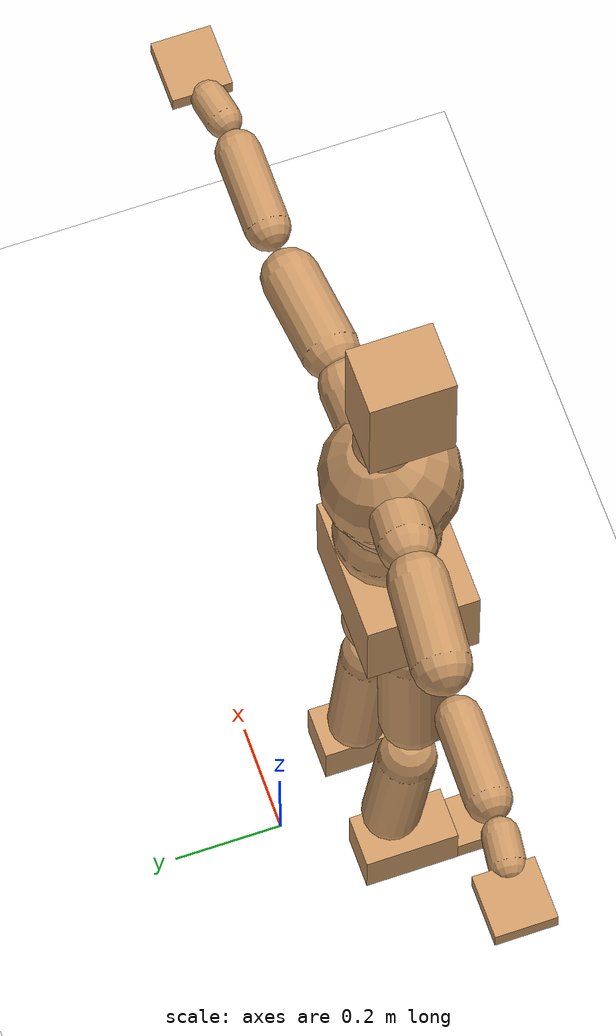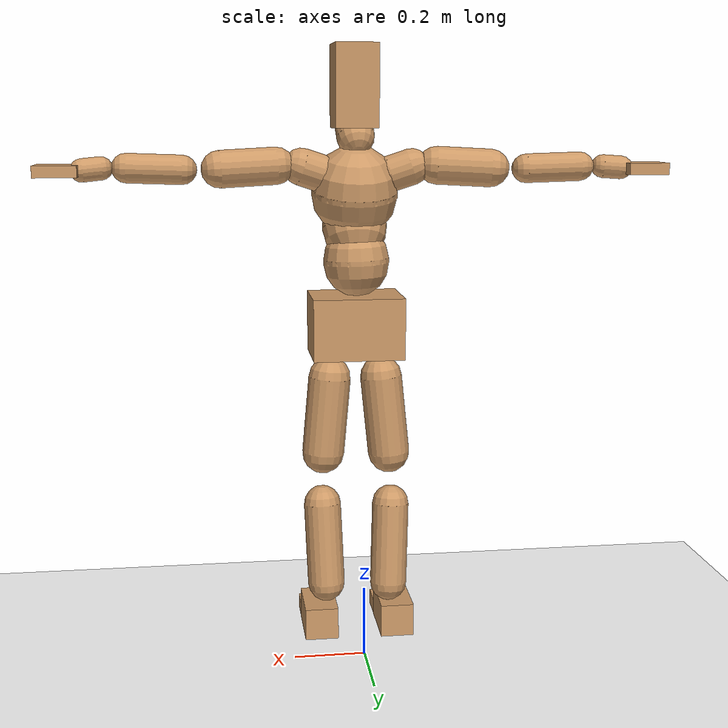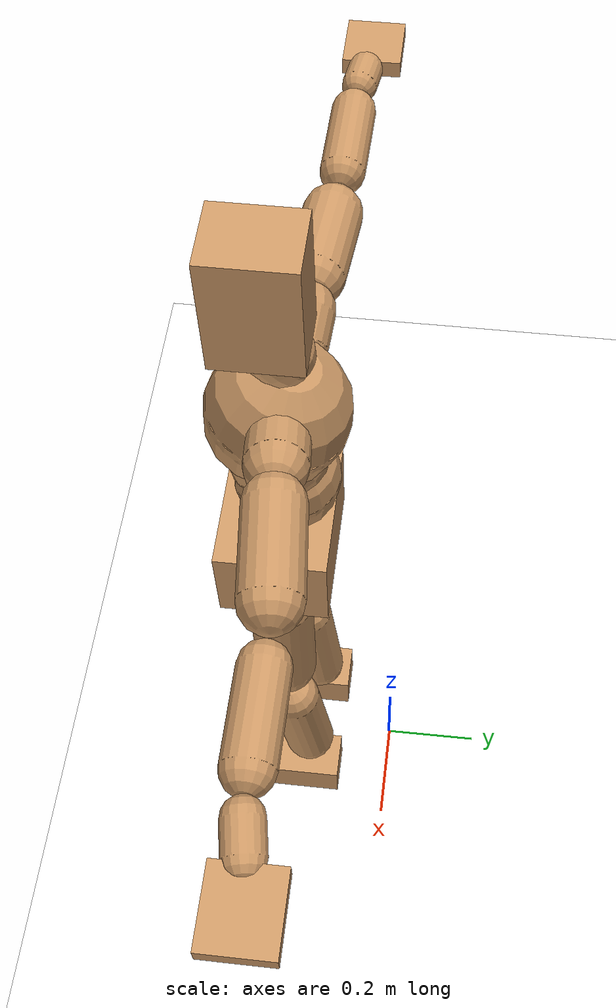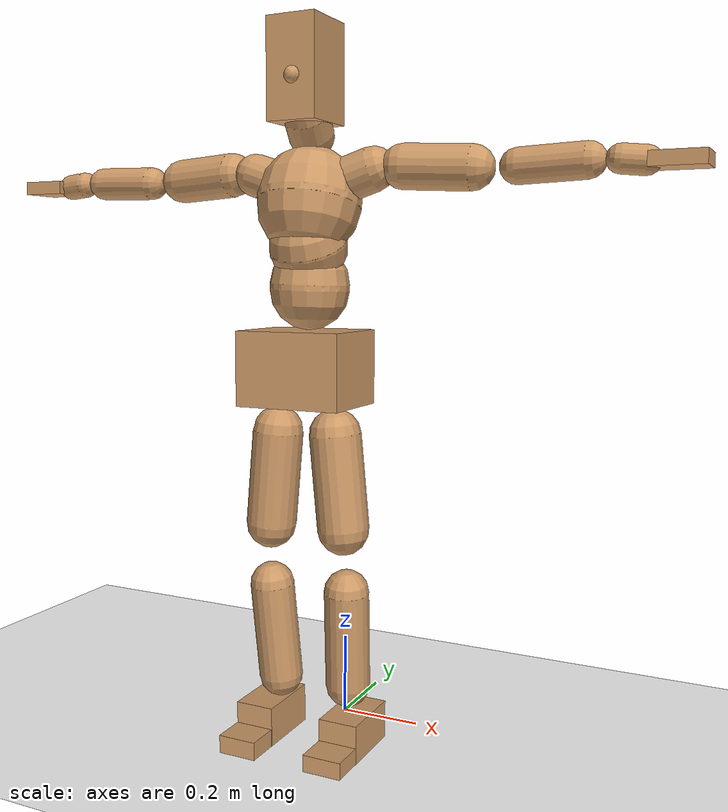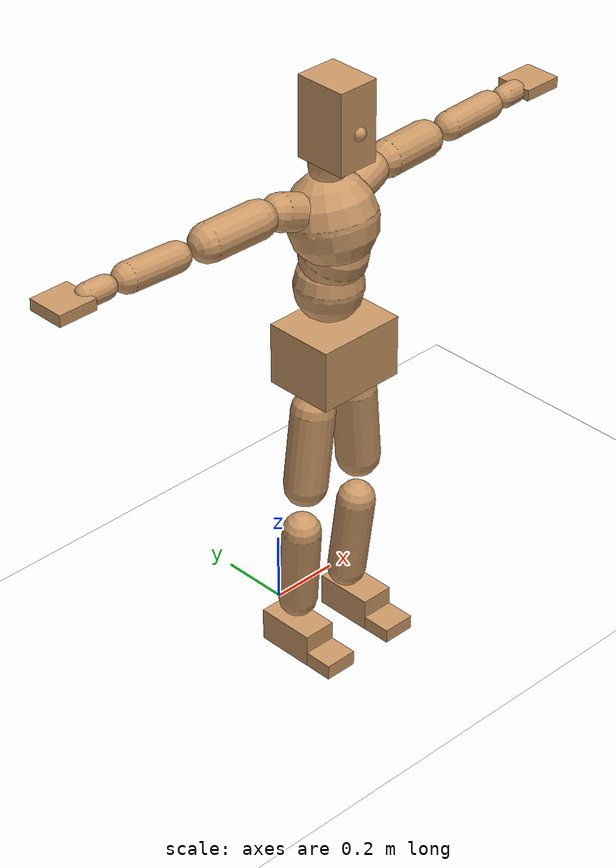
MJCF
<mujoco model="humanoid">
  <option integrator="implicitfast" />

  <visual>
    <global offwidth="1280" offheight="960" />
    <headlight active="1" ambient="0.34 0.34 0.34" diffuse="0.5 0.5 0.5" />
  </visual>

  <default>
    <joint damping="2" stiffness="2" armature="0.01" limited="true" solimplimit="0 .99 .01" />
    <geom condim="1" friction="0.7 0.005 0.0001" solimp=".99 .99 .003" solref="0.015 1" margin="0.001" rgba="0.8 0.6 .4 1" />
    <default class="smplcontact">
      <geom condim="3" friction="1. 0.005 0.0001" solref="0.015 1" solimp="0.98 0.98 0.001" priority="1" />
    </default>
    <default class="stiff_medium">
      <joint stiffness="10" />
    </default>
    <default class="stiff_medium_higher">
      <joint stiffness="50" />
    </default>
    <default class="stiff_high">
      <joint stiffness="100" />
    </default>
  </default>

  <asset>
    <texture type="skybox" builtin="gradient" rgb1="0.99 0.99 0.99" rgb2="0.608 0.828 0.892" width="100" />
    <texture builtin="flat" height="1278" mark="cross" markrgb="1 1 1" name="texgeom" random="0.01" rgb1="0.8 0.6 0.4" rgb2="0.8 0.6 0.4" type="cube" width="127" />
    <texture name="texplane" type="2d" builtin="checker" markrgb="1 1 1" rgb1="0.756 0.772 0.76" rgb2="0.6 0.6 0.6" width="100" height="100" />
    <material name="MatPlane" reflectance="0.5" texture="texplane" texrepeat="1 1" texuniform="true" />
    <material name="geom" texture="texgeom" texuniform="true" />
  </asset>

  <worldbody>
    <light name="tracking_light" pos="0 0 7" dir="0 0 -1" directional="true" cutoff="100" exponent="1" diffuse="1 1 1" specular="0.1 0.1 0.1" mode="trackcom" />
    <camera name="back" pos="0 3 2.4" xyaxes="-1 0 0 0 -1 2" mode="trackcom" />
    <camera name="side" pos="-3 0 2.4" xyaxes="0 -1 0 1 0 2" mode="trackcom" />
    <camera name="front_side" pos="-2.8 -2.8 0.8" xyaxes="0.5 -0.5 0 0.1 0.1 1" mode="trackcom" />
    <geom condim="3" name="floor" pos="0 0 0" rgba="1 1 1 1" size="100 100 .2" type="plane" material="MatPlane" />
    <body name="Pelvis" pos="-0.0018 -0.2233 0.9367" euler="90 0 0">
      <site name="Pelvis" size="0.01" />
      <freejoint name="Pelvis" />
      <geom type="box" pos="-0.0000 -0.0121 -0.0055" size="0.130952 0.088445 0.101675" quat="1.0000 0.0000 0.0000 0.0000" density="3165.830099" name="Pelvis" />
      <body name="L_Hip" pos="0.0695 -0.0914 -0.0068">
        <joint name="L_Hip_x" type="hinge" pos="0 0 0" axis="1 0 0" stiffness="10.0" range="-160.0 22.92" class="stiff_medium" damping="15.0" armature="0.010000000000000002"/>
        <joint name="L_Hip_y" type="hinge" pos="0 0 0" axis="0 1 0" stiffness="10.0" range="-70.0 70.0" class="stiff_medium" damping="10.0" armature="0.01"/>
        <joint name="L_Hip_z" type="hinge" pos="0 0 0" axis="0 0 1" stiffness="10.0" range="-28.65 90.0" class="stiff_medium" damping="9.999999999999998" armature="0.009999999999999998"/>
        <geom type="capsule" density="2040.816327" fromto="0.0069 -0.075 -0.0009 0.0274 -0.3002 -0.0036" size="0.0615" name="L_Hip" />
        <body name="L_Knee" pos="0.0343 -0.3752 -0.0045">
          <joint name="L_Knee_x" type="hinge" pos="0 0 0" axis="1 0 0" range="-5.16 171.89" damping="8.000000000000004" armature="0.010000000000000009" stiffness="2.0"/>
          <joint name="L_Knee_y" type="hinge" pos="0 0 0" axis="0 1 0" range="-4.58 6.88" damping="8.000000000000002" armature="0.010000000000000005" stiffness="2.0"/>
          <joint name="L_Knee_z" type="hinge" pos="0 0 0" axis="0 0 1" range="-6.88 4.58" damping="7.999999999999997" armature="0.009999999999999993" stiffness="2.0"/>
          <geom type="capsule" density="1234.567901" fromto="-0.0027 -0.0796 -0.0087 -0.0109 -0.3184 -0.035" size="0.0541" name="L_Knee" />
          <body name="L_Ankle" pos="-0.0136 -0.398 -0.0437">
            <joint name="L_Ankle_x" type="hinge" pos="0 0 0" axis="1 0 0" range="-45.84 45.84" class="stiff_medium" damping="6.000000000000062" armature="0.010000000000000208" stiffness="10.0"/>
            <joint name="L_Ankle_y" type="hinge" pos="0 0 0" axis="0 1 0" range="-74.48 22.92" class="stiff_medium" damping="3.0" armature="0.01" stiffness="10.0"/>
            <joint name="L_Ankle_z" type="hinge" pos="0 0 0" axis="0 0 1" range="-4.58 4.58" class="stiff_medium" damping="6.000000000000039" armature="0.010000000000000129" stiffness="10.0"/>
            <geom type="box" pos="0.0233 -0.0239 0.0242" size="0.0483 0.0464 0.085" quat="1.0000 0.0000 0.0000 0.0000" density="449.071558" name="L_Ankle" class="smplcontact" />
            <body name="L_Toe" pos="0.0264 -0.0558 0.1193">
              <joint name="L_Toe_x" type="hinge" pos="0 0 0" axis="1 0 0" range="-91.67 22.92" armature="0.00999999999999969" damping="1.999999999999969" stiffness="2.0"/>
              <joint name="L_Toe_y" type="hinge" pos="0 0 0" axis="0 1 0" range="-4.58 4.58" armature="0.009999999999999976" damping="1.9999999999999976" stiffness="2.0"/>
              <joint name="L_Toe_z" type="hinge" pos="0 0 0" axis="0 0 1" range="-4.58 4.58" armature="0.010000000000000267" damping="2.0000000000000266" stiffness="2.0"/>
              <geom type="box" pos="-0.003 0.0055 0.0248" size="0.0478 0.02 0.0496" quat="1.0000 0.0000 0.0000 0.0000" density="423.206892" name="L_Toe" class="smplcontact" />
            </body>
          </body>
        </body>
      </body>
      <body name="R_Hip" pos="-0.0677 -0.0905 -0.0043">
        <joint name="R_Hip_x" type="hinge" pos="0 0 0" axis="1 0 0" stiffness="10.0" range="-160.0 22.92" class="stiff_medium" damping="15.0" armature="0.010000000000000002"/>
        <joint name="R_Hip_y" type="hinge" pos="0 0 0" axis="0 1 0" stiffness="10.0" range="-70.0 70.0" class="stiff_medium" damping="10.0" armature="0.01"/>
        <joint name="R_Hip_z" type="hinge" pos="0 0 0" axis="0 0 1" stiffness="10.0" range="-90.0 28.65" class="stiff_medium" damping="9.999999999999998" armature="0.009999999999999998"/>
        <geom type="capsule" density="2040.816327" fromto="-0.0077 -0.0765 -0.0018 -0.0306 -0.3061 -0.0071" size="0.0606" name="R_Hip" />
        <body name="R_Knee" pos="-0.0383 -0.3826 -0.0089">
          <joint name="R_Knee_x" type="hinge" pos="0 0 0" axis="1 0 0" range="-5.16 171.89" damping="8.000000000000004" armature="0.010000000000000009" stiffness="2.0"/>
          <joint name="R_Knee_y" type="hinge" pos="0 0 0" axis="0 1 0" range="-6.88 4.58" damping="8.000000000000002" armature="0.010000000000000005" stiffness="2.0"/>
          <joint name="R_Knee_z" type="hinge" pos="0 0 0" axis="0 0 1" range="-4.58 6.88" damping="7.999999999999997" armature="0.009999999999999993" stiffness="2.0"/>
          <geom type="capsule" density="1234.567901" fromto="0.0032 -0.0797 -0.0085 0.0126 -0.3187 -0.0338" size="0.0541" name="R_Knee" />
          <body name="R_Ankle" pos="0.0158 -0.3984 -0.0423">
            <joint name="R_Ankle_x" type="hinge" pos="0 0 0" axis="1 0 0" range="-45.84 45.84" class="stiff_medium" damping="6.000000000000062" armature="0.010000000000000208" stiffness="10.0"/>
            <joint name="R_Ankle_y" type="hinge" pos="0 0 0" axis="0 1 0" range="-22.92 74.48" class="stiff_medium" damping="3.0" armature="0.01" stiffness="10.0"/>
            <joint name="R_Ankle_z" type="hinge" pos="0 0 0" axis="0 0 1" range="-4.58 4.58" class="stiff_medium" damping="6.000000000000039" armature="0.010000000000000129" stiffness="10.0"/>
            <geom type="box" pos="-0.0212 -0.0174 0.0256" size="0.0483 0.0478 0.0865" quat="1.0000 0.0000 0.0000 0.0000" density="434.700981" name="R_Ankle" class="smplcontact" />
            <body name="R_Toe" pos="-0.0254 -0.0481 0.1233">
              <joint name="R_Toe_x" type="hinge" pos="0 0 0" axis="1 0 0" range="-91.67 22.92" armature="0.00999999999999969" damping="1.999999999999969" stiffness="2.0"/>
              <joint name="R_Toe_y" type="hinge" pos="0 0 0" axis="0 1 0" range="-4.58 4.58" armature="0.009999999999999976" damping="1.9999999999999976" stiffness="2.0"/>
              <joint name="R_Toe_z" type="hinge" pos="0 0 0" axis="0 0 1" range="-4.58 4.58" armature="0.010000000000000267" damping="2.0000000000000266" stiffness="2.0"/>
              <geom type="box" pos="0.0042 0.0045 0.0227" size="0.0479 0.0216 0.0493" quat="1.0000 0.0000 0.0000 0.0000" density="407.384095" name="R_Toe" class="smplcontact" />
            </body>
          </body>
        </body>
      </body>
      <body name="Torso" pos="-0.0025 0.109 -0.0267">
        <joint name="Torso_x" type="hinge" pos="0 0 0" axis="1 0 0" range="-25.78 57.3" class="stiff_medium" damping="19.22655919460388" armature="0.012466699064776685" stiffness="13.178595999999999"/>
        <joint name="Torso_y" type="hinge" pos="0 0 0" axis="0 1 0" range="-57.3 57.3" class="stiff_high" damping="23.80807450861472" armature="0.010604346966136095" stiffness="133.6302022222222"/>
        <joint name="Torso_z" type="hinge" pos="0 0 0" axis="0 0 1" range="-34.38 34.38" class="stiff_high" damping="25.47066272531223" armature="0.011670375208078823" stiffness="138.97467906976743"/>
        <geom type="capsule" density="2040.816327" fromto="0.0025 0.0608 0.0005 0.003 0.0743 0.0006" size="0.0942025" name="Torso" />
        <body name="Spine" pos="0.0055 0.1352 0.0011">
          <joint name="Spine_x" type="hinge" pos="0 0 0" axis="1 0 0" stiffness="12.627337999999998" range="-25.78 57.3" class="stiff_medium" damping="18.3091630384234" armature="0.011798930970867236"/>
          <joint name="Spine_y" type="hinge" pos="0 0 0" axis="0 1 0" stiffness="12.676794888888892" range="-57.3 57.3" class="stiff_high" damping="9.228849699045794" armature="0.010497979220361468"/>
          <joint name="Spine_z" type="hinge" pos="0 0 0" axis="0 0 1" stiffness="24.861915454545453" range="-34.38 34.38" class="stiff_high" damping="13.93506185537756" armature="0.010848026062874326"/>
          <geom type="capsule" density="2040.816327" fromto="0.0007 0.0238 0.0114 0.0008 0.0291 0.014" size="0.0924875" name="Spine" />
          <body name="Chest" pos="0.0015 0.0529 0.0254">
            <joint name="Chest_x" type="hinge" pos="0 0 0" axis="1 0 0" stiffness="11.887542558139534" range="-25.78 57.3" class="stiff_medium" damping="17.529962003683778" armature="0.011489135373724505"/>
            <joint name="Chest_y" type="hinge" pos="0 0 0" axis="0 1 0" stiffness="11.45143027027027" range="-57.3 57.3" class="stiff_high" damping="8.736992992377683" armature="0.010415599398290152"/>
            <joint name="Chest_z" type="hinge" pos="0 0 0" axis="0 0 1" stiffness="24.259179545454543" range="-34.38 34.38" class="stiff_high" damping="13.58031949071649" armature="0.010558722336446797"/>
            <geom type="capsule" density="2040.816327" fromto="-0.0009 0.0682 -0.0173 -0.001 0.0833 -0.0212" size="0.122745" name="Chest" />
            <body name="Neck" pos="-0.0028 0.2139 -0.0429">
              <joint name="Neck_x" type="hinge" pos="0 0 0" axis="1 0 0" range="-28.65 57.3" class="stiff_medium_higher" damping="10.333458539208191" armature="0.01014279579458227" stiffness="52.63852666666667"/>
              <joint name="Neck_y" type="hinge" pos="0 0 0" axis="0 1 0" range="-40.11 40.11" class="stiff_medium_higher" damping="10.500597353016953" armature="0.010584057268371553" stiffness="52.08897777777779"/>
              <joint name="Neck_z" type="hinge" pos="0 0 0" axis="0 0 1" range="-40.11 40.11" class="stiff_medium_higher" damping="10.163324837092915" armature="0.01012026797152068" stiffness="51.032824444444444"/>
              <geom type="capsule" density="1000" fromto="0.001 0.013 0.0103 0.0041 0.052 0.0411" size="0.05341" name="Neck" />
              <body name="Head" pos="0.0052 0.065 0.0513">
                <joint name="Head_x" type="hinge" pos="0 0 0" axis="1 0 0" range="-28.65 57.3" class="stiff_medium_higher" damping="1.9999999999999978" armature="0.009999999999999978" stiffness="50.0"/>
                <joint name="Head_y" type="hinge" pos="0 0 0" axis="0 1 0" range="-40.11 40.11" class="stiff_medium_higher" damping="2.0" armature="0.01" stiffness="50.0"/>
                <joint name="Head_z" type="hinge" pos="0 0 0" axis="0 0 1" range="-40.11 40.11" class="stiff_medium_higher" damping="1.999999999999996" armature="0.009999999999999962" stiffness="50.0"/>
                <geom type="box" pos="-0.0042 0.0876 -0.0116" size="0.0606 0.1154 0.076" quat="1.0000 0.0000 0.0000 0.0000" density="1018.069894" name="Head" />
                <geom type="capsule" name="nose" size="0.02 0.01" pos="0 0.07 0.05" quat="1 0 0 0" mass="0" contype="0" conaffinity="0" />
              </body>
            </body>
            <body name="L_Thorax" pos="0.0788 0.1217 -0.0341">
              <joint name="L_Thorax_x" type="hinge" pos="0 0 0" axis="1 0 0" range="-10.89 4.58" class="stiff_medium_higher" damping="19.999999999999957" armature="0.009999999999999959" stiffness="50.0"/>
              <joint name="L_Thorax_y" type="hinge" pos="0 0 0" axis="0 1 0" range="-28.65 17.19" class="stiff_medium_higher" damping="20.0" armature="0.01" stiffness="50.0"/>
              <joint name="L_Thorax_z" type="hinge" pos="0 0 0" axis="0 0 1" range="-31.51 40.11" class="stiff_medium_higher" damping="19.999999999999996" armature="0.009999999999999997" stiffness="50.0"/>
              <geom type="capsule" density="1000" fromto="0.0182 0.0061 -0.0018 0.0728 0.0244 -0.0071" size="0.0521" name="L_Thorax" />
              <body name="L_Shoulder" pos="0.091 0.0305 -0.0089">
                <joint name="L_Shoulder_x" type="hinge" pos="0 0 0" axis="1 0 0" range="-97.4 97.4" class="stiff_medium" damping="6.000000000000011" armature="0.010000000000000038" stiffness="10.0"/>
                <joint name="L_Shoulder_y" type="hinge" pos="0 0 0" axis="0 1 0" range="-108.86 80.21" class="stiff_medium" damping="6.0" armature="0.01" stiffness="10.0"/>
                <joint name="L_Shoulder_z" type="hinge" pos="0 0 0" axis="0 0 1" range="-97.4 85.94" class="stiff_medium" damping="6.0" armature="0.010000000000000002" stiffness="10.0"/>
                <geom type="capsule" density="1000" fromto="0.0519 -0.0026 -0.0055 0.2077 -0.0102 -0.022" size="0.0517" name="L_Shoulder" />
                <body name="L_Elbow" pos="0.2596 -0.0128 -0.0275">
                  <joint name="L_Elbow_x" type="hinge" pos="0 0 0" axis="1 0 0" range="-17.19 4.58" damping="4.999999999999853" armature="0.009999999999999412" stiffness="2.0"/>
                  <joint name="L_Elbow_y" type="hinge" pos="0 0 0" axis="0 1 0" range="-180.0 17.19" damping="5.000000000000001" armature="0.010000000000000005" stiffness="2.0"/>
                  <joint name="L_Elbow_z" type="hinge" pos="0 0 0" axis="0 0 1" range="-100.84 4.58" damping="4.9999999999999964" armature="0.009999999999999986" stiffness="2.0"/>
                  <geom type="capsule" density="1000" fromto="0.0498 0.0018 -0.0002 0.1994 0.0072 -0.0009" size="0.0405" name="L_Elbow" />
                  <body name="L_Wrist" pos="0.2492 0.009 -0.0012">
                    <joint name="L_Wrist_x" type="hinge" pos="0 0 0" axis="1 0 0" range="-180.0 22.92" armature="0.009999999999999364" damping="1.9999999999999363" stiffness="2.0"/>
                    <joint name="L_Wrist_y" type="hinge" pos="0 0 0" axis="0 1 0" range="-17.19 17.19" armature="0.009999999999999886" damping="1.9999999999999885" stiffness="2.0"/>
                    <joint name="L_Wrist_z" type="hinge" pos="0 0 0" axis="0 0 1" range="-22.92 22.92" armature="0.009999999999999738" damping="1.9999999999999738" stiffness="2.0"/>
                    <geom type="capsule" density="1000" fromto="0.0168 -0.0016 -0.003 0.0672 -0.0065 -0.012" size="0.0318" name="L_Wrist" class="smplcontact" />
                    <body name="L_Hand" pos="0.084 -0.0082 -0.0149">
                      <joint name="L_Hand_x" type="hinge" pos="0 0 0" axis="1 0 0" range="-17.19 17.19" armature="0.009999999999999669" damping="1.999999999999967" stiffness="2.0"/>
                      <joint name="L_Hand_y" type="hinge" pos="0 0 0" axis="0 1 0" range="-51.57 51.57" armature="0.010000000000000061" damping="2.0000000000000058" stiffness="2.0"/>
                      <joint name="L_Hand_z" type="hinge" pos="0 0 0" axis="0 0 1" range="-91.67 91.67" armature="0.010000000000000134" damping="2.0000000000000133" stiffness="2.0"/>
                      <geom type="box" pos="0.0493 0.001 -0.0058" size="0.0585 0.0158 0.0538" quat="1.0000 0.0000 0.0000 0.0000" density="400.552564" name="L_Hand" class="smplcontact" />
                    </body>
                  </body>
                </body>
              </body>
            </body>
            <body name="R_Thorax" pos="-0.0818 0.1188 -0.0386">
              <joint name="R_Thorax_x" type="hinge" pos="0 0 0" axis="1 0 0" range="-10.89 4.58" class="stiff_medium_higher" damping="19.999999999999957" armature="0.009999999999999959" stiffness="50.0"/>
              <joint name="R_Thorax_y" type="hinge" pos="0 0 0" axis="0 1 0" range="-17.19 28.65" class="stiff_medium_higher" damping="20.0" armature="0.01" stiffness="50.0"/>
              <joint name="R_Thorax_z" type="hinge" pos="0 0 0" axis="0 0 1" range="-40.11 31.51" class="stiff_medium_higher" damping="19.999999999999996" armature="0.009999999999999997" stiffness="50.0"/>
              <geom type="capsule" density="1000" fromto="-0.0192 0.0065 -0.0018 -0.0768 0.026 -0.0073" size="0.0511" name="R_Thorax" />
              <body name="R_Shoulder" pos="-0.096 0.0326 -0.0091">
                <joint name="R_Shoulder_x" type="hinge" pos="0 0 0" axis="1 0 0" range="-97.4 97.4" class="stiff_medium" damping="6.000000000000011" armature="0.010000000000000038" stiffness="10.0"/>
                <joint name="R_Shoulder_y" type="hinge" pos="0 0 0" axis="0 1 0" range="-80.21 108.86" class="stiff_medium" damping="6.0" armature="0.01" stiffness="10.0"/>
                <joint name="R_Shoulder_z" type="hinge" pos="0 0 0" axis="0 0 1" range="-85.94 97.4" class="stiff_medium" damping="6.0" armature="0.010000000000000002" stiffness="10.0"/>
                <geom type="capsule" density="1000" fromto="-0.0507 -0.0027 -0.0043 -0.203 -0.0107 -0.0171" size="0.0531" name="R_Shoulder" />
                <body name="R_Elbow" pos="-0.2537 -0.0133 -0.0214">
                  <joint name="R_Elbow_x" type="hinge" pos="0 0 0" axis="1 0 0" range="-17.19 4.58" damping="4.999999999999853" armature="0.009999999999999412" stiffness="2.0"/>
                  <joint name="R_Elbow_y" type="hinge" pos="0 0 0" axis="0 1 0" range="-17.19 180.0" damping="5.000000000000001" armature="0.010000000000000005" stiffness="2.0"/>
                  <joint name="R_Elbow_z" type="hinge" pos="0 0 0" axis="0 0 1" range="-4.58 100.84" damping="4.9999999999999964" armature="0.009999999999999986" stiffness="2.0"/>
                  <geom type="capsule" density="1000" fromto="-0.0511 0.0016 -0.0011 -0.2042 0.0062 -0.0044" size="0.0408" name="R_Elbow" />
                  <body name="R_Wrist" pos="-0.2553 0.0078 -0.0056">
                    <joint name="R_Wrist_x" type="hinge" pos="0 0 0" axis="1 0 0" range="-180.0 22.92" armature="0.009999999999999364" damping="1.9999999999999363" stiffness="2.0"/>
                    <joint name="R_Wrist_y" type="hinge" pos="0 0 0" axis="0 1 0" range="-17.19 17.19" armature="0.009999999999999886" damping="1.9999999999999885" stiffness="2.0"/>
                    <joint name="R_Wrist_z" type="hinge" pos="0 0 0" axis="0 0 1" range="-22.92 22.92" armature="0.009999999999999738" damping="1.9999999999999738" stiffness="2.0"/>
                    <geom type="capsule" density="1000" fromto="-0.0169 -0.0012 -0.0021 -0.0677 -0.0049 -0.0083" size="0.0326" name="R_Wrist" class="smplcontact" />
                    <body name="R_Hand" pos="-0.0846 -0.0061 -0.0103">
                      <joint name="R_Hand_x" type="hinge" pos="0 0 0" axis="1 0 0" range="-17.19 17.19" armature="0.009999999999999669" damping="1.999999999999967" stiffness="2.0"/>
                      <joint name="R_Hand_y" type="hinge" pos="0 0 0" axis="0 1 0" range="-51.57 51.57" armature="0.010000000000000061" damping="2.0000000000000058" stiffness="2.0"/>
                      <joint name="R_Hand_z" type="hinge" pos="0 0 0" axis="0 0 1" range="-91.67 91.67" armature="0.010000000000000134" damping="2.0000000000000133" stiffness="2.0"/>
                      <geom type="box" pos="-0.0462 -0.0009 -0.0079" size="0.0569 0.0164 0.0546" quat="1.0000 0.0000 0.0000 0.0000" density="403.679611" name="R_Hand" class="smplcontact" />
                    </body>
                  </body>
                </body>
              </body>
            </body>
          </body>
        </body>
      </body>
    </body>
  </worldbody>
  <actuator>
    <general name="L_Hip_x" joint="L_Hip_x" biastype="affine" gainprm="287.33006409732246" biasprm="-215.3247604770444 -180.0 -2.0" ctrllimited="true" ctrlrange="-1 1" forcerange="-360.0 360.0" />
    <general name="L_Hip_y" joint="L_Hip_y" biastype="affine" gainprm="219.9114857512855" biasprm="0.0 -180.0 -2.0" ctrllimited="true" ctrlrange="-1 1" forcerange="-360.0 360.0" />
    <general name="L_Hip_z" joint="L_Hip_z" biastype="affine" gainprm="186.3749841742145" biasprm="96.3683546488669 -180.0 -1.9999999999999998" ctrllimited="true" ctrlrange="-1 1" forcerange="-360.0 360.0" />
    <general name="L_Knee_x" joint="L_Knee_x" biastype="affine" gainprm="278.10948965903646" biasprm="261.8988715665131 -180.0 -2.000000000000001" ctrllimited="true" ctrlrange="-1 1" forcerange="-360.0 360.0" />
    <general name="L_Knee_y" joint="L_Knee_y" biastype="affine" gainprm="18.001325905069514" biasprm="3.612831551628262 -180.0 -2.0000000000000004" ctrllimited="true" ctrlrange="-1 1" forcerange="-360.0 360.0" />
    <general name="L_Knee_z" joint="L_Knee_z" biastype="affine" gainprm="18.001325905069514" biasprm="-3.612831551628262 -180.0 -1.9999999999999993" ctrllimited="true" ctrlrange="-1 1" forcerange="-360.0 360.0" />
    <general name="L_Ankle_x" joint="L_Ankle_x" biastype="affine" gainprm="72.00530362027807" biasprm="0.0 -90.0 -2.000000000000021" ctrllimited="true" ctrlrange="-1 1" forcerange="-180.0 180.0" />
    <general name="L_Ankle_y" joint="L_Ankle_y" biastype="affine" gainprm="76.49778111491148" biasprm="-40.49512930477244 -90.0 -2.0" ctrllimited="true" ctrlrange="-1 1" forcerange="-180.0 180.0" />
    <general name="L_Ankle_z" joint="L_Ankle_z" biastype="affine" gainprm="7.1942471767206255" biasprm="0.0 -90.0 -2.000000000000013" ctrllimited="true" ctrlrange="-1 1" forcerange="-180.0 180.0" />
    <general name="L_Toe_x" joint="L_Toe_x" biastype="affine" gainprm="71.99902043497087" biasprm="-43.19689898685965 -72.0 -0.7999999999999876" ctrllimited="true" ctrlrange="-1 1" forcerange="-144.0 144.0" />
    <general name="L_Toe_y" joint="L_Toe_y" biastype="affine" gainprm="5.755397741376501" biasprm="0.0 -72.0 -0.799999999999999" ctrllimited="true" ctrlrange="-1 1" forcerange="-144.0 144.0" />
    <general name="L_Toe_z" joint="L_Toe_z" biastype="affine" gainprm="5.755397741376501" biasprm="0.0 -72.0 -0.8000000000000107" ctrllimited="true" ctrlrange="-1 1" forcerange="-144.0 144.0" />
    <general name="R_Hip_x" joint="R_Hip_x" biastype="affine" gainprm="287.33006409732246" biasprm="-215.3247604770444 -180.0 -2.0" ctrllimited="true" ctrlrange="-1 1" forcerange="-360.0 360.0" />
    <general name="R_Hip_y" joint="R_Hip_y" biastype="affine" gainprm="219.9114857512855" biasprm="0.0 -180.0 -2.0" ctrllimited="true" ctrlrange="-1 1" forcerange="-360.0 360.0" />
    <general name="R_Hip_z" joint="R_Hip_z" biastype="affine" gainprm="186.3749841742145" biasprm="-96.3683546488669 -180.0 -1.9999999999999998" ctrllimited="true" ctrlrange="-1 1" forcerange="-360.0 360.0" />
    <general name="R_Knee_x" joint="R_Knee_x" biastype="affine" gainprm="278.10948965903646" biasprm="261.8988715665131 -180.0 -2.000000000000001" ctrllimited="true" ctrlrange="-1 1" forcerange="-360.0 360.0" />
    <general name="R_Knee_y" joint="R_Knee_y" biastype="affine" gainprm="18.001325905069514" biasprm="-3.612831551628262 -180.0 -2.0000000000000004" ctrllimited="true" ctrlrange="-1 1" forcerange="-360.0 360.0" />
    <general name="R_Knee_z" joint="R_Knee_z" biastype="affine" gainprm="18.001325905069514" biasprm="3.612831551628262 -180.0 -1.9999999999999993" ctrllimited="true" ctrlrange="-1 1" forcerange="-360.0 360.0" />
    <general name="R_Ankle_x" joint="R_Ankle_x" biastype="affine" gainprm="72.00530362027807" biasprm="0.0 -90.0 -2.000000000000021" ctrllimited="true" ctrlrange="-1 1" forcerange="-180.0 180.0" />
    <general name="R_Ankle_y" joint="R_Ankle_y" biastype="affine" gainprm="76.49778111491148" biasprm="40.49512930477244 -90.0 -2.0" ctrllimited="true" ctrlrange="-1 1" forcerange="-180.0 180.0" />
    <general name="R_Ankle_z" joint="R_Ankle_z" biastype="affine" gainprm="7.1942471767206255" biasprm="0.0 -90.0 -2.000000000000013" ctrllimited="true" ctrlrange="-1 1" forcerange="-180.0 180.0" />
    <general name="R_Toe_x" joint="R_Toe_x" biastype="affine" gainprm="71.99902043497087" biasprm="-43.19689898685965 -72.0 -0.7999999999999876" ctrllimited="true" ctrlrange="-1 1" forcerange="-144.0 144.0" />
    <general name="R_Toe_y" joint="R_Toe_y" biastype="affine" gainprm="5.755397741376501" biasprm="0.0 -72.0 -0.799999999999999" ctrllimited="true" ctrlrange="-1 1" forcerange="-144.0 144.0" />
    <general name="R_Toe_z" joint="R_Toe_z" biastype="affine" gainprm="5.755397741376501" biasprm="0.0 -72.0 -0.8000000000000107" ctrllimited="true" ctrlrange="-1 1" forcerange="-144.0 144.0" />
    <general name="Torso_x" joint="Torso_x" biastype="affine" gainprm="229.31066092154452" biasprm="86.99894116811606 -316.286304 -5.127082451894368" ctrllimited="true" ctrlrange="-1 1" forcerange="-474.4294559999999 474.4294559999999" />
    <general name="Torso_y" joint="Torso_y" biastype="affine" gainprm="320.73610946167554" biasprm="0.0 -320.71248533333335 -4.761614901722944" ctrllimited="true" ctrlrange="-1 1" forcerange="-481.06872799999996 481.06872799999996" />
    <general name="Torso_z" joint="Torso_z" biastype="affine" gainprm="200.13827923898617" biasprm="0.0 -333.53922976744184 -5.094132545062446" ctrllimited="true" ctrlrange="-1 1" forcerange="-500.30884465116276 500.30884465116276" />
    <general name="Spine_x" joint="Spine_x" biastype="affine" gainprm="219.71864244565464" biasprm="83.3597930896369 -303.056112 -4.882443476912907" ctrllimited="true" ctrlrange="-1 1" forcerange="-454.584168 454.584168" />
    <general name="Spine_y" joint="Spine_y" biastype="affine" gainprm="304.26548830214455" biasprm="0.0 -304.2430773333334 -4.614424849522897" ctrllimited="true" ctrlrange="-1 1" forcerange="-456.36461600000007 456.36461600000007" />
    <general name="Spine_z" joint="Spine_z" biastype="affine" gainprm="179.0189770886229" biasprm="0.0 -298.34298545454544 -4.645020618459187" ctrllimited="true" ctrlrange="-1 1" forcerange="-447.51447818181816 447.51447818181816" />
    <general name="Chest_x" joint="Chest_x" biastype="affine" gainprm="206.84602826734846" biasprm="78.47600879858958 -285.3010213953488 -4.674656534315674" ctrllimited="true" ctrlrange="-1 1" forcerange="-427.9515320930232 427.9515320930232" />
    <general name="Chest_y" joint="Chest_y" biastype="affine" gainprm="274.8545711657512" biasprm="0.0 -274.8343264864865 -4.3684964961888415" ctrllimited="true" ctrlrange="-1 1" forcerange="-412.25148972972977 412.25148972972977" />
    <general name="Chest_z" joint="Chest_z" biastype="affine" gainprm="174.67895887492938" biasprm="0.0 -291.1101545454545 -4.526773163572163" ctrllimited="true" ctrlrange="-1 1" forcerange="-436.6652318181818 436.6652318181818" />
    <general name="Neck_x" joint="Neck_x" biastype="affine" gainprm="28.426898210680775" biasprm="9.475632736893592 -37.899739200000006 -0.8266766831366553" ctrllimited="true" ctrlrange="-1 1" forcerange="-75.79947840000001 75.79947840000001" />
    <general name="Neck_y" joint="Neck_y" biastype="affine" gainprm="26.254778621111644" biasprm="0.0 -37.50406400000001 -0.8400477882413564" ctrllimited="true" ctrlrange="-1 1" forcerange="-75.00812800000001 75.00812800000001" />
    <general name="Neck_z" joint="Neck_z" biastype="affine" gainprm="25.72243813105799" biasprm="0.0 -36.7436336 -0.8130659869674333" ctrllimited="true" ctrlrange="-1 1" forcerange="-73.4872672 73.4872672" />
    <general name="Head_x" joint="Head_x" biastype="affine" gainprm="18.001325905069514" biasprm="6.000441968356505 -24.0 -0.7999999999999992" ctrllimited="true" ctrlrange="-1 1" forcerange="-48.0 48.0" />
    <general name="Head_y" joint="Head_y" biastype="affine" gainprm="16.801237511398213" biasprm="0.0 -24.0 -0.8" ctrllimited="true" ctrlrange="-1 1" forcerange="-48.0 48.0" />
    <general name="Head_z" joint="Head_z" biastype="affine" gainprm="16.801237511398213" biasprm="0.0 -24.0 -0.7999999999999985" ctrllimited="true" ctrlrange="-1 1" forcerange="-48.0 48.0" />
    <general name="L_Thorax_x" joint="L_Thorax_x" biastype="affine" gainprm="16.200146117011364" biasprm="-6.6078165480505335 -120.0 -1.5999999999999968" ctrllimited="true" ctrlrange="-1 1" forcerange="-240.0 240.0" />
    <general name="L_Thorax_y" joint="L_Thorax_y" biastype="affine" gainprm="48.00353574685204" biasprm="-12.00088393671301 -120.0 -1.6" ctrllimited="true" ctrlrange="-1 1" forcerange="-240.0 240.0" />
    <general name="L_Thorax_z" joint="L_Thorax_z" biastype="affine" gainprm="75.00028861670033" biasprm="9.00589894029074 -120.0 -1.5999999999999996" ctrllimited="true" ctrlrange="-1 1" forcerange="-240.0 240.0" />
    <general name="L_Shoulder_x" joint="L_Shoulder_x" biastype="affine" gainprm="81.5976331892389" biasprm="0.0 -48.0 -1.600000000000003" ctrllimited="true" ctrlrange="-1 1" forcerange="-96.0 96.0" />
    <general name="L_Shoulder_y" joint="L_Shoulder_y" biastype="affine" gainprm="79.19745640189629" biasprm="-12.00088393671301 -48.0 -1.6" ctrllimited="true" ctrlrange="-1 1" forcerange="-96.0 96.0" />
    <general name="L_Shoulder_z" joint="L_Shoulder_z" biastype="affine" gainprm="76.79727961455369" biasprm="-4.800353574685214 -48.0 -1.6" ctrllimited="true" ctrlrange="-1 1" forcerange="-96.0 96.0" />
    <general name="L_Elbow_x" joint="L_Elbow_x" biastype="affine" gainprm="13.67849441372996" biasprm="-7.923096672353461 -72.0 -0.7999999999999765" ctrllimited="true" ctrlrange="-1 1" forcerange="-144.0 144.0" />
    <general name="L_Elbow_y" joint="L_Elbow_y" biastype="affine" gainprm="123.89813107227425" biasprm="-102.29653998619085 -72.0 -0.8000000000000003" ctrllimited="true" ctrlrange="-1 1" forcerange="-144.0 144.0" />
    <general name="L_Elbow_z" joint="L_Elbow_z" biastype="affine" gainprm="66.23733950828719" biasprm="-60.4819417669107 -72.0 -0.7999999999999994" ctrllimited="true" ctrlrange="-1 1" forcerange="-144.0 144.0" />
    <general name="L_Wrist_x" joint="L_Wrist_x" biastype="affine" gainprm="21.24973270888136" biasprm="-16.449379134196157 -12.0 -0.7999999999999745" ctrllimited="true" ctrlrange="-1 1" forcerange="-24.0 24.0" />
    <general name="L_Wrist_y" joint="L_Wrist_y" biastype="affine" gainprm="3.6002651810139037" biasprm="0.0 -12.0 -0.7999999999999954" ctrllimited="true" ctrlrange="-1 1" forcerange="-24.0 24.0" />
    <general name="L_Wrist_z" joint="L_Wrist_z" biastype="affine" gainprm="4.800353574685205" biasprm="0.0 -12.0 -0.7999999999999896" ctrllimited="true" ctrlrange="-1 1" forcerange="-24.0 24.0" />
    <general name="L_Hand_x" joint="L_Hand_x" biastype="affine" gainprm="3.6002651810139037" biasprm="0.0 -12.0 -0.7999999999999868" ctrllimited="true" ctrlrange="-1 1" forcerange="-24.0 24.0" />
    <general name="L_Hand_y" joint="L_Hand_y" biastype="affine" gainprm="10.800795543041708" biasprm="0.0 -12.0 -0.8000000000000024" ctrllimited="true" ctrlrange="-1 1" forcerange="-24.0 24.0" />
    <general name="L_Hand_z" joint="L_Hand_z" biastype="affine" gainprm="19.199319903638422" biasprm="0.0 -12.0 -0.8000000000000054" ctrllimited="true" ctrlrange="-1 1" forcerange="-24.0 24.0" />
    <general name="R_Thorax_x" joint="R_Thorax_x" biastype="affine" gainprm="16.200146117011364" biasprm="-6.6078165480505335 -120.0 -1.5999999999999968" ctrllimited="true" ctrlrange="-1 1" forcerange="-240.0 240.0" />
    <general name="R_Thorax_y" joint="R_Thorax_y" biastype="affine" gainprm="48.00353574685204" biasprm="12.000883936713002 -120.0 -1.6" ctrllimited="true" ctrlrange="-1 1" forcerange="-240.0 240.0" />
    <general name="R_Thorax_z" joint="R_Thorax_z" biastype="affine" gainprm="75.00028861670033" biasprm="-9.00589894029074 -120.0 -1.5999999999999996" ctrllimited="true" ctrlrange="-1 1" forcerange="-240.0 240.0" />
    <general name="R_Shoulder_x" joint="R_Shoulder_x" biastype="affine" gainprm="81.5976331892389" biasprm="0.0 -48.0 -1.600000000000003" ctrllimited="true" ctrlrange="-1 1" forcerange="-96.0 96.0" />
    <general name="R_Shoulder_y" joint="R_Shoulder_y" biastype="affine" gainprm="79.19745640189629" biasprm="12.00088393671301 -48.0 -1.6" ctrllimited="true" ctrlrange="-1 1" forcerange="-96.0 96.0" />
    <general name="R_Shoulder_z" joint="R_Shoulder_z" biastype="affine" gainprm="76.79727961455369" biasprm="4.800353574685204 -48.0 -1.6" ctrllimited="true" ctrlrange="-1 1" forcerange="-96.0 96.0" />
    <general name="R_Elbow_x" joint="R_Elbow_x" biastype="affine" gainprm="13.67849441372996" biasprm="-7.923096672353461 -72.0 -0.7999999999999765" ctrllimited="true" ctrlrange="-1 1" forcerange="-144.0 144.0" />
    <general name="R_Elbow_y" joint="R_Elbow_y" biastype="affine" gainprm="123.89813107227425" biasprm="102.29653998619085 -72.0 -0.8000000000000003" ctrllimited="true" ctrlrange="-1 1" forcerange="-144.0 144.0" />
    <general name="R_Elbow_z" joint="R_Elbow_z" biastype="affine" gainprm="66.23733950828719" biasprm="60.481941766910694 -72.0 -0.7999999999999994" ctrllimited="true" ctrlrange="-1 1" forcerange="-144.0 144.0" />
    <general name="R_Wrist_x" joint="R_Wrist_x" biastype="affine" gainprm="21.24973270888136" biasprm="-16.449379134196157 -12.0 -0.7999999999999745" ctrllimited="true" ctrlrange="-1 1" forcerange="-24.0 24.0" />
    <general name="R_Wrist_y" joint="R_Wrist_y" biastype="affine" gainprm="3.6002651810139037" biasprm="0.0 -12.0 -0.7999999999999954" ctrllimited="true" ctrlrange="-1 1" forcerange="-24.0 24.0" />
    <general name="R_Wrist_z" joint="R_Wrist_z" biastype="affine" gainprm="4.800353574685205" biasprm="0.0 -12.0 -0.7999999999999896" ctrllimited="true" ctrlrange="-1 1" forcerange="-24.0 24.0" />
    <general name="R_Hand_x" joint="R_Hand_x" biastype="affine" gainprm="3.6002651810139037" biasprm="0.0 -12.0 -0.7999999999999868" ctrllimited="true" ctrlrange="-1 1" forcerange="-24.0 24.0" />
    <general name="R_Hand_y" joint="R_Hand_y" biastype="affine" gainprm="10.800795543041708" biasprm="0.0 -12.0 -0.8000000000000024" ctrllimited="true" ctrlrange="-1 1" forcerange="-24.0 24.0" />
    <general name="R_Hand_z" joint="R_Hand_z" biastype="affine" gainprm="19.199319903638422" biasprm="0.0 -12.0 -0.8000000000000054" ctrllimited="true" ctrlrange="-1 1" forcerange="-24.0 24.0" />
  </actuator>
  <contact>
    <exclude body1="Torso" body2="Chest" />
    <exclude body1="Head" body2="Chest" />
    <exclude body1="R_Knee" body2="R_Toe" />
    <exclude body1="R_Knee" body2="L_Ankle" />
    <exclude body1="R_Knee" body2="L_Toe" />
    <exclude body1="L_Knee" body2="L_Toe" />
    <exclude body1="L_Knee" body2="R_Ankle" />
    <exclude body1="L_Knee" body2="R_Toe" />
    <exclude body1="L_Shoulder" body2="Chest" />
    <exclude body1="R_Shoulder" body2="Chest" />
  </contact>
  <sensor>
    <framelinvel name="sensor_Pelvis_framelinvel" objtype="xbody" objname="Pelvis" />
    <framelinvel name="sensor_L_Hip_framelinvel" objtype="xbody" objname="L_Hip" />
    <framelinvel name="sensor_L_Knee_framelinvel" objtype="xbody" objname="L_Knee" />
    <framelinvel name="sensor_L_Ankle_framelinvel" objtype="xbody" objname="L_Ankle" />
    <framelinvel name="sensor_L_Toe_framelinvel" objtype="xbody" objname="L_Toe" />
    <framelinvel name="sensor_R_Hip_framelinvel" objtype="xbody" objname="R_Hip" />
    <framelinvel name="sensor_R_Knee_framelinvel" objtype="xbody" objname="R_Knee" />
    <framelinvel name="sensor_R_Ankle_framelinvel" objtype="xbody" objname="R_Ankle" />
    <framelinvel name="sensor_R_Toe_framelinvel" objtype="xbody" objname="R_Toe" />
    <framelinvel name="sensor_Torso_framelinvel" objtype="xbody" objname="Torso" />
    <framelinvel name="sensor_Spine_framelinvel" objtype="xbody" objname="Spine" />
    <framelinvel name="sensor_Chest_framelinvel" objtype="xbody" objname="Chest" />
    <framelinvel name="sensor_Neck_framelinvel" objtype="xbody" objname="Neck" />
    <framelinvel name="sensor_Head_framelinvel" objtype="xbody" objname="Head" />
    <framelinvel name="sensor_L_Thorax_framelinvel" objtype="xbody" objname="L_Thorax" />
    <framelinvel name="sensor_L_Shoulder_framelinvel" objtype="xbody" objname="L_Shoulder" />
    <framelinvel name="sensor_L_Elbow_framelinvel" objtype="xbody" objname="L_Elbow" />
    <framelinvel name="sensor_L_Wrist_framelinvel" objtype="xbody" objname="L_Wrist" />
    <framelinvel name="sensor_L_Hand_framelinvel" objtype="xbody" objname="L_Hand" />
    <framelinvel name="sensor_R_Thorax_framelinvel" objtype="xbody" objname="R_Thorax" />
    <framelinvel name="sensor_R_Shoulder_framelinvel" objtype="xbody" objname="R_Shoulder" />
    <framelinvel name="sensor_R_Elbow_framelinvel" objtype="xbody" objname="R_Elbow" />
    <framelinvel name="sensor_R_Wrist_framelinvel" objtype="xbody" objname="R_Wrist" />
    <framelinvel name="sensor_R_Hand_framelinvel" objtype="xbody" objname="R_Hand" />
    <frameangvel name="sensor_Pelvis_frameangvel" objtype="xbody" objname="Pelvis" />
    <frameangvel name="sensor_L_Hip_frameangvel" objtype="xbody" objname="L_Hip" />
    <frameangvel name="sensor_L_Knee_frameangvel" objtype="xbody" objname="L_Knee" />
    <frameangvel name="sensor_L_Ankle_frameangvel" objtype="xbody" objname="L_Ankle" />
    <frameangvel name="sensor_L_Toe_frameangvel" objtype="xbody" objname="L_Toe" />
    <frameangvel name="sensor_R_Hip_frameangvel" objtype="xbody" objname="R_Hip" />
    <frameangvel name="sensor_R_Knee_frameangvel" objtype="xbody" objname="R_Knee" />
    <frameangvel name="sensor_R_Ankle_frameangvel" objtype="xbody" objname="R_Ankle" />
    <frameangvel name="sensor_R_Toe_frameangvel" objtype="xbody" objname="R_Toe" />
    <frameangvel name="sensor_Torso_frameangvel" objtype="xbody" objname="Torso" />
    <frameangvel name="sensor_Spine_frameangvel" objtype="xbody" objname="Spine" />
    <frameangvel name="sensor_Chest_frameangvel" objtype="xbody" objname="Chest" />
    <frameangvel name="sensor_Neck_frameangvel" objtype="xbody" objname="Neck" />
    <frameangvel name="sensor_Head_frameangvel" objtype="xbody" objname="Head" />
    <frameangvel name="sensor_L_Thorax_frameangvel" objtype="xbody" objname="L_Thorax" />
    <frameangvel name="sensor_L_Shoulder_frameangvel" objtype="xbody" objname="L_Shoulder" />
    <frameangvel name="sensor_L_Elbow_frameangvel" objtype="xbody" objname="L_Elbow" />
    <frameangvel name="sensor_L_Wrist_frameangvel" objtype="xbody" objname="L_Wrist" />
    <frameangvel name="sensor_L_Hand_frameangvel" objtype="xbody" objname="L_Hand" />
    <frameangvel name="sensor_R_Thorax_frameangvel" objtype="xbody" objname="R_Thorax" />
    <frameangvel name="sensor_R_Shoulder_frameangvel" objtype="xbody" objname="R_Shoulder" />
    <frameangvel name="sensor_R_Elbow_frameangvel" objtype="xbody" objname="R_Elbow" />
    <frameangvel name="sensor_R_Wrist_frameangvel" objtype="xbody" objname="R_Wrist" />
    <frameangvel name="sensor_R_Hand_frameangvel" objtype="xbody" objname="R_Hand" />
    <subtreelinvel name="Chest_subtreelinvel" body="Chest" />
    <gyro name="Pelvis_gyro" site="Pelvis" />
  </sensor>
</mujoco>
